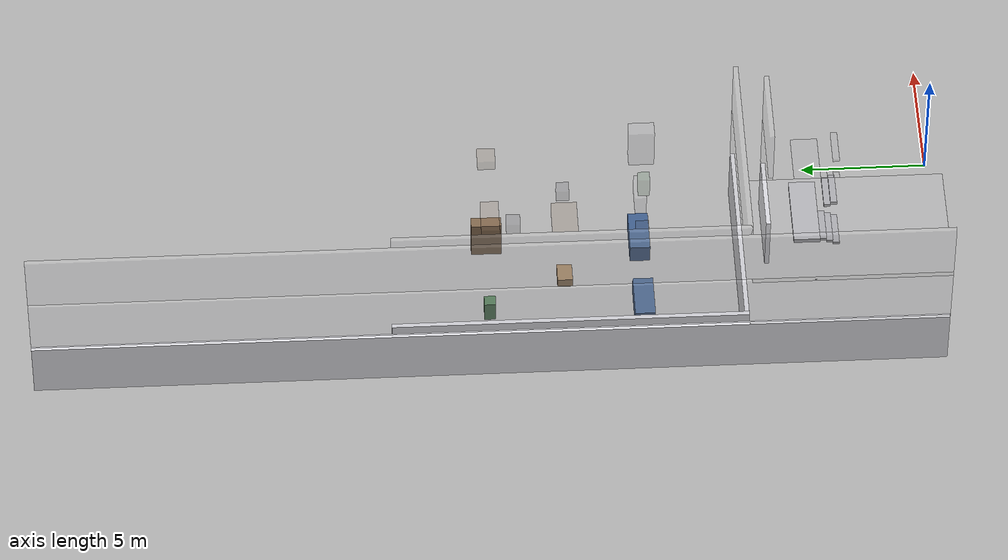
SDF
<sdf version="1.7">
 <model name="generated_building">
  <static>true</static>
  <link name="exterior_west_floor_0">
   <pose>-9.9100 18.0000 1.2250 0.0000 0.0000 0.0000</pose>
   <collision name="exterior_west_floor_0_collision">
    <geometry><box><size>0.1800 36.0000 2.4500</size></box></geometry>
   </collision>
   <visual name="exterior_west_floor_0_visual">
    <geometry><box><size>0.1800 36.0000 2.4500</size></box></geometry>
    <material><ambient>0.86 0.86 0.88 1</ambient><diffuse>0.86 0.86 0.88 1</diffuse></material>
   </visual>
   <gravity>false</gravity>
  </link>
  <link name="floor_0_room_0_west_wall">
   <pose>-9.4100 14.8650 1.2250 0.0000 0.0000 0.0000</pose>
   <collision name="floor_0_room_0_west_wall_collision">
    <geometry><box><size>0.1800 14.0300 2.4500</size></box></geometry>
   </collision>
   <visual name="floor_0_room_0_west_wall_visual">
    <geometry><box><size>0.1800 14.0300 2.4500</size></box></geometry>
    <material><ambient>0.86 0.86 0.88 1</ambient><diffuse>0.86 0.86 0.88 1</diffuse></material>
   </visual>
   <gravity>false</gravity>
  </link>
  <link name="floor_0_room_0_south_wall">
   <pose>-5.3000 7.9400 1.2250 0.0000 0.0000 0.0000</pose>
   <collision name="floor_0_room_0_south_wall_collision">
    <geometry><box><size>8.4000 0.1800 2.4500</size></box></geometry>
   </collision>
   <visual name="floor_0_room_0_south_wall_visual">
    <geometry><box><size>8.4000 0.1800 2.4500</size></box></geometry>
    <material><ambient>0.86 0.86 0.88 1</ambient><diffuse>0.86 0.86 0.88 1</diffuse></material>
   </visual>
   <gravity>false</gravity>
  </link>
  <link name="stair_core_floor_0_north">
   <pose>-3.2500 6.7600 1.2250 0.0000 0.0000 0.0000</pose>
   <collision name="stair_core_floor_0_north_collision">
    <geometry><box><size>3.2000 0.1800 2.4500</size></box></geometry>
   </collision>
   <visual name="stair_core_floor_0_north_visual">
    <geometry><box><size>3.2000 0.1800 2.4500</size></box></geometry>
    <material><ambient>0.86 0.86 0.88 1</ambient><diffuse>0.86 0.86 0.88 1</diffuse></material>
   </visual>
   <gravity>false</gravity>
  </link>
  <link name="floor_0_room_0_sofa_a">
   <pose>-7.0000 11.8075 0.4500 0.0000 0.0000 0.0000</pose>
   <collision name="floor_0_room_0_sofa_a_collision">
    <geometry><box><size>1.8000 0.8000 0.8000</size></box></geometry>
   </collision>
   <visual name="floor_0_room_0_sofa_a_visual">
    <geometry><box><size>1.8000 0.8000 0.8000</size></box></geometry>
    <material><ambient>0.24 0.36 0.54 1</ambient><diffuse>0.24 0.36 0.54 1</diffuse></material>
   </visual>
   <gravity>false</gravity>
  </link>
  <link name="floor_0_room_0_sofa_b">
   <pose>-3.6000 11.8075 0.4500 0.0000 0.0000 3.1400</pose>
   <collision name="floor_0_room_0_sofa_b_collision">
    <geometry><box><size>1.8000 0.8000 0.8000</size></box></geometry>
   </collision>
   <visual name="floor_0_room_0_sofa_b_visual">
    <geometry><box><size>1.8000 0.8000 0.8000</size></box></geometry>
    <material><ambient>0.24 0.36 0.54 1</ambient><diffuse>0.24 0.36 0.54 1</diffuse></material>
   </visual>
   <gravity>false</gravity>
  </link>
  <link name="floor_0_room_0_coffee_table">
   <pose>-5.3000 14.8650 0.2500 0.0000 0.0000 0.0000</pose>
   <collision name="floor_0_room_0_coffee_table_collision">
    <geometry><box><size>0.8000 0.6000 0.4000</size></box></geometry>
   </collision>
   <visual name="floor_0_room_0_coffee_table_visual">
    <geometry><box><size>0.8000 0.6000 0.4000</size></box></geometry>
    <material><ambient>0.60 0.48 0.34 1</ambient><diffuse>0.60 0.48 0.34 1</diffuse></material>
   </visual>
   <gravity>false</gravity>
  </link>
  <link name="floor_0_room_0_bookshelf">
   <pose>-3.6000 17.9225 0.8500 0.0000 0.0000 0.0000</pose>
   <collision name="floor_0_room_0_bookshelf_collision">
    <geometry><box><size>0.4500 1.2000 1.7000</size></box></geometry>
   </collision>
   <visual name="floor_0_room_0_bookshelf_visual">
    <geometry><box><size>0.4500 1.2000 1.7000</size></box></geometry>
    <material><ambient>0.50 0.40 0.30 1</ambient><diffuse>0.50 0.40 0.30 1</diffuse></material>
   </visual>
   <gravity>false</gravity>
  </link>
  <link name="floor_0_room_0_planter">
   <pose>-7.0000 17.9225 0.4500 0.0000 0.0000 0.0000</pose>
   <collision name="floor_0_room_0_planter_collision">
    <geometry><box><size>0.4500 0.4500 0.9000</size></box></geometry>
   </collision>
   <visual name="floor_0_room_0_planter_visual">
    <geometry><box><size>0.4500 0.4500 0.9000</size></box></geometry>
    <material><ambient>0.28 0.46 0.30 1</ambient><diffuse>0.28 0.46 0.30 1</diffuse></material>
   </visual>
   <gravity>false</gravity>
  </link>
  <link name="slab_floor_1_1">
   <pose>-7.4700 3.9250 2.4900 0.0000 0.0000 0.0000</pose>
   <collision name="slab_floor_1_1_collision">
    <geometry><box><size>5.0600 7.8500 0.2200</size></box></geometry>
   </collision>
   <visual name="slab_floor_1_1_visual">
    <geometry><box><size>5.0600 7.8500 0.2200</size></box></geometry>
    <material><ambient>0.76 0.76 0.77 1</ambient><diffuse>0.76 0.76 0.77 1</diffuse></material>
    <transparency>0.80</transparency>
   </visual>
   <gravity>false</gravity>
  </link>
  <link name="exterior_west_floor_1">
   <pose>-9.9100 18.0000 3.8250 0.0000 0.0000 0.0000</pose>
   <collision name="exterior_west_floor_1_collision">
    <geometry><box><size>0.1800 36.0000 2.4500</size></box></geometry>
   </collision>
   <visual name="exterior_west_floor_1_visual">
    <geometry><box><size>0.1800 36.0000 2.4500</size></box></geometry>
    <material><ambient>0.86 0.86 0.88 1</ambient><diffuse>0.86 0.86 0.88 1</diffuse></material>
    <transparency>0.80</transparency>
   </visual>
   <gravity>false</gravity>
  </link>
  <link name="floor_1_room_0_west_wall">
   <pose>-9.4100 14.8650 3.8250 0.0000 0.0000 0.0000</pose>
   <collision name="floor_1_room_0_west_wall_collision">
    <geometry><box><size>0.1800 14.0300 2.4500</size></box></geometry>
   </collision>
   <visual name="floor_1_room_0_west_wall_visual">
    <geometry><box><size>0.1800 14.0300 2.4500</size></box></geometry>
    <material><ambient>0.86 0.86 0.88 1</ambient><diffuse>0.86 0.86 0.88 1</diffuse></material>
    <transparency>0.80</transparency>
   </visual>
   <gravity>false</gravity>
  </link>
  <link name="floor_1_room_0_south_wall">
   <pose>-5.3000 7.9400 3.8250 0.0000 0.0000 0.0000</pose>
   <collision name="floor_1_room_0_south_wall_collision">
    <geometry><box><size>8.4000 0.1800 2.4500</size></box></geometry>
   </collision>
   <visual name="floor_1_room_0_south_wall_visual">
    <geometry><box><size>8.4000 0.1800 2.4500</size></box></geometry>
    <material><ambient>0.86 0.86 0.88 1</ambient><diffuse>0.86 0.86 0.88 1</diffuse></material>
    <transparency>0.80</transparency>
   </visual>
   <gravity>false</gravity>
  </link>
  <link name="stair_core_floor_1_north">
   <pose>-3.2500 6.7600 3.8250 0.0000 0.0000 0.0000</pose>
   <collision name="stair_core_floor_1_north_collision">
    <geometry><box><size>3.2000 0.1800 2.4500</size></box></geometry>
   </collision>
   <visual name="stair_core_floor_1_north_visual">
    <geometry><box><size>3.2000 0.1800 2.4500</size></box></geometry>
    <material><ambient>0.86 0.86 0.88 1</ambient><diffuse>0.86 0.86 0.88 1</diffuse></material>
    <transparency>0.80</transparency>
   </visual>
   <gravity>false</gravity>
  </link>
  <link name="floor_1_room_0_table">
   <pose>-5.3000 14.8650 3.0500 0.0000 0.0000 0.0000</pose>
   <collision name="floor_1_room_0_table_collision">
    <geometry><box><size>2.2000 1.0000 0.7500</size></box></geometry>
   </collision>
   <visual name="floor_1_room_0_table_visual">
    <geometry><box><size>2.2000 1.0000 0.7500</size></box></geometry>
    <material><ambient>0.50 0.38 0.28 1</ambient><diffuse>0.50 0.38 0.28 1</diffuse></material>
    <transparency>0.80</transparency>
   </visual>
   <gravity>false</gravity>
  </link>
  <link name="floor_1_room_0_chair_north">
   <pose>-5.3000 17.9225 2.8800 0.0000 0.0000 0.0000</pose>
   <collision name="floor_1_room_0_chair_north_collision">
    <geometry><box><size>0.5000 0.5000 0.5500</size></box></geometry>
   </collision>
   <visual name="floor_1_room_0_chair_north_visual">
    <geometry><box><size>0.5000 0.5000 0.5500</size></box></geometry>
    <material><ambient>0.30 0.30 0.34 1</ambient><diffuse>0.30 0.30 0.34 1</diffuse></material>
    <transparency>0.80</transparency>
   </visual>
   <gravity>false</gravity>
  </link>
  <link name="floor_1_room_0_chair_south">
   <pose>-5.3000 11.8075 2.8800 0.0000 0.0000 0.0000</pose>
   <collision name="floor_1_room_0_chair_south_collision">
    <geometry><box><size>0.5000 0.5000 0.5500</size></box></geometry>
   </collision>
   <visual name="floor_1_room_0_chair_south_visual">
    <geometry><box><size>0.5000 0.5000 0.5500</size></box></geometry>
    <material><ambient>0.30 0.30 0.34 1</ambient><diffuse>0.30 0.30 0.34 1</diffuse></material>
    <transparency>0.80</transparency>
   </visual>
   <gravity>false</gravity>
  </link>
  <link name="floor_1_room_0_chair_west">
   <pose>-7.4500 14.8650 2.8800 0.0000 0.0000 1.5700</pose>
   <collision name="floor_1_room_0_chair_west_collision">
    <geometry><box><size>0.5000 0.5000 0.5500</size></box></geometry>
   </collision>
   <visual name="floor_1_room_0_chair_west_visual">
    <geometry><box><size>0.5000 0.5000 0.5500</size></box></geometry>
    <material><ambient>0.30 0.30 0.34 1</ambient><diffuse>0.30 0.30 0.34 1</diffuse></material>
    <transparency>0.80</transparency>
   </visual>
   <gravity>false</gravity>
  </link>
  <link name="floor_1_room_0_chair_east">
   <pose>-3.1500 14.8650 2.8800 0.0000 0.0000 1.5700</pose>
   <collision name="floor_1_room_0_chair_east_collision">
    <geometry><box><size>0.5000 0.5000 0.5500</size></box></geometry>
   </collision>
   <visual name="floor_1_room_0_chair_east_visual">
    <geometry><box><size>0.5000 0.5000 0.5500</size></box></geometry>
    <material><ambient>0.30 0.30 0.34 1</ambient><diffuse>0.30 0.30 0.34 1</diffuse></material>
    <transparency>0.80</transparency>
   </visual>
   <gravity>false</gravity>
  </link>
  <link name="floor_1_room_0_credenza">
   <pose>-3.6000 11.8075 3.0500 0.0000 0.0000 0.0000</pose>
   <collision name="floor_1_room_0_credenza_collision">
    <geometry><box><size>1.2000 0.4500 0.9000</size></box></geometry>
   </collision>
   <visual name="floor_1_room_0_credenza_visual">
    <geometry><box><size>1.2000 0.4500 0.9000</size></box></geometry>
    <material><ambient>0.72 0.72 0.74 1</ambient><diffuse>0.72 0.72 0.74 1</diffuse></material>
    <transparency>0.80</transparency>
   </visual>
   <gravity>false</gravity>
  </link>
  <link name="slab_floor_2_1">
   <pose>-7.4700 3.9250 5.0900 0.0000 0.0000 0.0000</pose>
   <collision name="slab_floor_2_1_collision">
    <geometry><box><size>5.0600 7.8500 0.2200</size></box></geometry>
   </collision>
   <visual name="slab_floor_2_1_visual">
    <geometry><box><size>5.0600 7.8500 0.2200</size></box></geometry>
    <material><ambient>0.76 0.76 0.77 1</ambient><diffuse>0.76 0.76 0.77 1</diffuse></material>
    <transparency>0.80</transparency>
   </visual>
   <gravity>false</gravity>
  </link>
  <link name="exterior_west_floor_2">
   <pose>-9.9100 18.0000 6.4250 0.0000 0.0000 0.0000</pose>
   <collision name="exterior_west_floor_2_collision">
    <geometry><box><size>0.1800 36.0000 2.4500</size></box></geometry>
   </collision>
   <visual name="exterior_west_floor_2_visual">
    <geometry><box><size>0.1800 36.0000 2.4500</size></box></geometry>
    <material><ambient>0.86 0.86 0.88 1</ambient><diffuse>0.86 0.86 0.88 1</diffuse></material>
    <transparency>0.80</transparency>
   </visual>
   <gravity>false</gravity>
  </link>
  <link name="floor_2_room_0_west_wall">
   <pose>-9.4100 14.8650 6.4250 0.0000 0.0000 0.0000</pose>
   <collision name="floor_2_room_0_west_wall_collision">
    <geometry><box><size>0.1800 14.0300 2.4500</size></box></geometry>
   </collision>
   <visual name="floor_2_room_0_west_wall_visual">
    <geometry><box><size>0.1800 14.0300 2.4500</size></box></geometry>
    <material><ambient>0.86 0.86 0.88 1</ambient><diffuse>0.86 0.86 0.88 1</diffuse></material>
    <transparency>0.80</transparency>
   </visual>
   <gravity>false</gravity>
  </link>
  <link name="floor_2_room_0_south_wall">
   <pose>-5.3000 7.9400 6.4250 0.0000 0.0000 0.0000</pose>
   <collision name="floor_2_room_0_south_wall_collision">
    <geometry><box><size>8.4000 0.1800 2.4500</size></box></geometry>
   </collision>
   <visual name="floor_2_room_0_south_wall_visual">
    <geometry><box><size>8.4000 0.1800 2.4500</size></box></geometry>
    <material><ambient>0.86 0.86 0.88 1</ambient><diffuse>0.86 0.86 0.88 1</diffuse></material>
    <transparency>0.80</transparency>
   </visual>
   <gravity>false</gravity>
  </link>
  <link name="stair_core_floor_2_north">
   <pose>-3.2500 6.7600 6.4250 0.0000 0.0000 0.0000</pose>
   <collision name="stair_core_floor_2_north_collision">
    <geometry><box><size>3.2000 0.1800 2.4500</size></box></geometry>
   </collision>
   <visual name="stair_core_floor_2_north_visual">
    <geometry><box><size>3.2000 0.1800 2.4500</size></box></geometry>
    <material><ambient>0.86 0.86 0.88 1</ambient><diffuse>0.86 0.86 0.88 1</diffuse></material>
    <transparency>0.80</transparency>
   </visual>
   <gravity>false</gravity>
  </link>
  <link name="floor_2_room_0_desk">
   <pose>-7.0000 17.9225 5.6500 0.0000 0.0000 0.0000</pose>
   <collision name="floor_2_room_0_desk_collision">
    <geometry><box><size>1.5000 0.7000 0.7500</size></box></geometry>
   </collision>
   <visual name="floor_2_room_0_desk_visual">
    <geometry><box><size>1.5000 0.7000 0.7500</size></box></geometry>
    <material><ambient>0.54 0.43 0.34 1</ambient><diffuse>0.54 0.43 0.34 1</diffuse></material>
    <transparency>0.80</transparency>
   </visual>
   <gravity>false</gravity>
  </link>
  <link name="floor_2_room_0_chair">
   <pose>-7.0000 17.0225 5.4800 0.0000 0.0000 0.0000</pose>
   <collision name="floor_2_room_0_chair_collision">
    <geometry><box><size>0.5500 0.5500 0.5500</size></box></geometry>
   </collision>
   <visual name="floor_2_room_0_chair_visual">
    <geometry><box><size>0.5500 0.5500 0.5500</size></box></geometry>
    <material><ambient>0.30 0.30 0.34 1</ambient><diffuse>0.30 0.30 0.34 1</diffuse></material>
    <transparency>0.80</transparency>
   </visual>
   <gravity>false</gravity>
  </link>
  <link name="floor_2_room_0_cabinet">
   <pose>-3.6000 11.8075 6.1000 0.0000 0.0000 0.0000</pose>
   <collision name="floor_2_room_0_cabinet_collision">
    <geometry><box><size>0.6000 1.0000 1.8000</size></box></geometry>
   </collision>
   <visual name="floor_2_room_0_cabinet_visual">
    <geometry><box><size>0.6000 1.0000 1.8000</size></box></geometry>
    <material><ambient>0.72 0.72 0.74 1</ambient><diffuse>0.72 0.72 0.74 1</diffuse></material>
    <transparency>0.80</transparency>
   </visual>
   <gravity>false</gravity>
  </link>
  <link name="floor_2_room_0_side_table">
   <pose>-3.6000 17.9225 5.5200 0.0000 0.0000 0.0000</pose>
   <collision name="floor_2_room_0_side_table_collision">
    <geometry><box><size>0.7000 0.7000 0.4500</size></box></geometry>
   </collision>
   <visual name="floor_2_room_0_side_table_visual">
    <geometry><box><size>0.7000 0.7000 0.4500</size></box></geometry>
    <material><ambient>0.52 0.42 0.33 1</ambient><diffuse>0.52 0.42 0.33 1</diffuse></material>
    <transparency>0.80</transparency>
   </visual>
   <gravity>false</gravity>
  </link>
  <link name="floor_2_room_0_planter">
   <pose>-5.3000 11.8075 5.6500 0.0000 0.0000 0.0000</pose>
   <collision name="floor_2_room_0_planter_collision">
    <geometry><box><size>0.4500 0.4500 0.9000</size></box></geometry>
   </collision>
   <visual name="floor_2_room_0_planter_visual">
    <geometry><box><size>0.4500 0.4500 0.9000</size></box></geometry>
    <material><ambient>0.28 0.46 0.30 1</ambient><diffuse>0.28 0.46 0.30 1</diffuse></material>
    <transparency>0.80</transparency>
   </visual>
   <gravity>false</gravity>
  </link>
  <link name="stair_flight_a_floor_0_step_7">
   <pose>-4.0150 4.0000 0.9750 0.0000 0.0000 0.0000</pose>
   <collision name="stair_flight_a_floor_0_step_7_collision">
    <geometry><box><size>1.4300 0.2600 0.1300</size></box></geometry>
   </collision>
   <visual name="stair_flight_a_floor_0_step_7_visual">
    <geometry><box><size>1.4300 0.2600 0.1300</size></box></geometry>
    <material><ambient>0.64 0.64 0.66 1</ambient><diffuse>0.64 0.64 0.66 1</diffuse></material>
   </visual>
   <gravity>false</gravity>
  </link>
  <link name="stair_flight_a_floor_0_step_8">
   <pose>-4.0150 4.2600 1.1050 0.0000 0.0000 0.0000</pose>
   <collision name="stair_flight_a_floor_0_step_8_collision">
    <geometry><box><size>1.4300 0.2600 0.1300</size></box></geometry>
   </collision>
   <visual name="stair_flight_a_floor_0_step_8_visual">
    <geometry><box><size>1.4300 0.2600 0.1300</size></box></geometry>
    <material><ambient>0.64 0.64 0.66 1</ambient><diffuse>0.64 0.64 0.66 1</diffuse></material>
   </visual>
   <gravity>false</gravity>
  </link>
  <link name="stair_flight_a_floor_0_step_9">
   <pose>-4.0150 4.5200 1.2350 0.0000 0.0000 0.0000</pose>
   <collision name="stair_flight_a_floor_0_step_9_collision">
    <geometry><box><size>1.4300 0.2600 0.1300</size></box></geometry>
   </collision>
   <visual name="stair_flight_a_floor_0_step_9_visual">
    <geometry><box><size>1.4300 0.2600 0.1300</size></box></geometry>
    <material><ambient>0.64 0.64 0.66 1</ambient><diffuse>0.64 0.64 0.66 1</diffuse></material>
   </visual>
   <gravity>false</gravity>
  </link>
  <link name="stair_turn_landing_floor_0">
   <pose>-3.2500 5.1750 1.2100 0.0000 0.0000 0.0000</pose>
   <collision name="stair_turn_landing_floor_0_collision">
    <geometry><box><size>3.0200 1.0500 0.1800</size></box></geometry>
   </collision>
   <visual name="stair_turn_landing_floor_0_visual">
    <geometry><box><size>3.0200 1.0500 0.1800</size></box></geometry>
    <material><ambient>0.68 0.68 0.70 1</ambient><diffuse>0.68 0.68 0.70 1</diffuse></material>
   </visual>
   <gravity>false</gravity>
  </link>
  <link name="stair_flight_b_floor_0_step_1">
   <pose>-2.4850 4.2600 1.4950 0.0000 0.0000 0.0000</pose>
   <collision name="stair_flight_b_floor_0_step_1_collision">
    <geometry><box><size>1.4300 0.2600 0.1300</size></box></geometry>
   </collision>
   <visual name="stair_flight_b_floor_0_step_1_visual">
    <geometry><box><size>1.4300 0.2600 0.1300</size></box></geometry>
    <material><ambient>0.64 0.64 0.66 1</ambient><diffuse>0.64 0.64 0.66 1</diffuse></material>
   </visual>
   <gravity>false</gravity>
  </link>
  <link name="stair_flight_b_floor_0_step_2">
   <pose>-2.4850 4.0000 1.6250 0.0000 0.0000 0.0000</pose>
   <collision name="stair_flight_b_floor_0_step_2_collision">
    <geometry><box><size>1.4300 0.2600 0.1300</size></box></geometry>
   </collision>
   <visual name="stair_flight_b_floor_0_step_2_visual">
    <geometry><box><size>1.4300 0.2600 0.1300</size></box></geometry>
    <material><ambient>0.64 0.64 0.66 1</ambient><diffuse>0.64 0.64 0.66 1</diffuse></material>
   </visual>
   <gravity>false</gravity>
  </link>
  <link name="stair_flight_a_floor_1_step_7">
   <pose>-4.0150 4.0000 3.5750 0.0000 0.0000 0.0000</pose>
   <collision name="stair_flight_a_floor_1_step_7_collision">
    <geometry><box><size>1.4300 0.2600 0.1300</size></box></geometry>
   </collision>
   <visual name="stair_flight_a_floor_1_step_7_visual">
    <geometry><box><size>1.4300 0.2600 0.1300</size></box></geometry>
    <material><ambient>0.64 0.64 0.66 1</ambient><diffuse>0.64 0.64 0.66 1</diffuse></material>
    <transparency>0.80</transparency>
   </visual>
   <gravity>false</gravity>
  </link>
  <link name="stair_flight_a_floor_1_step_8">
   <pose>-4.0150 4.2600 3.7050 0.0000 0.0000 0.0000</pose>
   <collision name="stair_flight_a_floor_1_step_8_collision">
    <geometry><box><size>1.4300 0.2600 0.1300</size></box></geometry>
   </collision>
   <visual name="stair_flight_a_floor_1_step_8_visual">
    <geometry><box><size>1.4300 0.2600 0.1300</size></box></geometry>
    <material><ambient>0.64 0.64 0.66 1</ambient><diffuse>0.64 0.64 0.66 1</diffuse></material>
    <transparency>0.80</transparency>
   </visual>
   <gravity>false</gravity>
  </link>
  <link name="stair_flight_a_floor_1_step_9">
   <pose>-4.0150 4.5200 3.8350 0.0000 0.0000 0.0000</pose>
   <collision name="stair_flight_a_floor_1_step_9_collision">
    <geometry><box><size>1.4300 0.2600 0.1300</size></box></geometry>
   </collision>
   <visual name="stair_flight_a_floor_1_step_9_visual">
    <geometry><box><size>1.4300 0.2600 0.1300</size></box></geometry>
    <material><ambient>0.64 0.64 0.66 1</ambient><diffuse>0.64 0.64 0.66 1</diffuse></material>
    <transparency>0.80</transparency>
   </visual>
   <gravity>false</gravity>
  </link>
  <link name="stair_turn_landing_floor_1">
   <pose>-3.2500 5.1750 3.8100 0.0000 0.0000 0.0000</pose>
   <collision name="stair_turn_landing_floor_1_collision">
    <geometry><box><size>3.0200 1.0500 0.1800</size></box></geometry>
   </collision>
   <visual name="stair_turn_landing_floor_1_visual">
    <geometry><box><size>3.0200 1.0500 0.1800</size></box></geometry>
    <material><ambient>0.68 0.68 0.70 1</ambient><diffuse>0.68 0.68 0.70 1</diffuse></material>
    <transparency>0.80</transparency>
   </visual>
   <gravity>false</gravity>
  </link>
  <link name="stair_flight_b_floor_1_step_2">
   <pose>-2.4850 4.0000 4.2250 0.0000 0.0000 0.0000</pose>
   <collision name="stair_flight_b_floor_1_step_2_collision">
    <geometry><box><size>1.4300 0.2600 0.1300</size></box></geometry>
   </collision>
   <visual name="stair_flight_b_floor_1_step_2_visual">
    <geometry><box><size>1.4300 0.2600 0.1300</size></box></geometry>
    <material><ambient>0.64 0.64 0.66 1</ambient><diffuse>0.64 0.64 0.66 1</diffuse></material>
    <transparency>0.80</transparency>
   </visual>
   <gravity>false</gravity>
  </link>
 </model>
</sdf>
